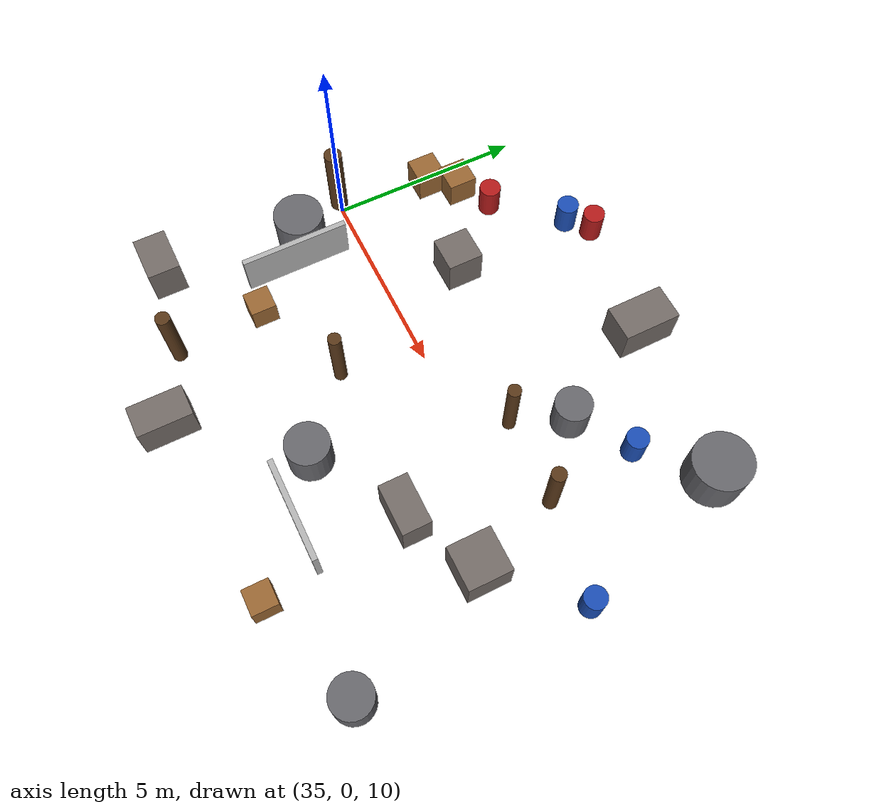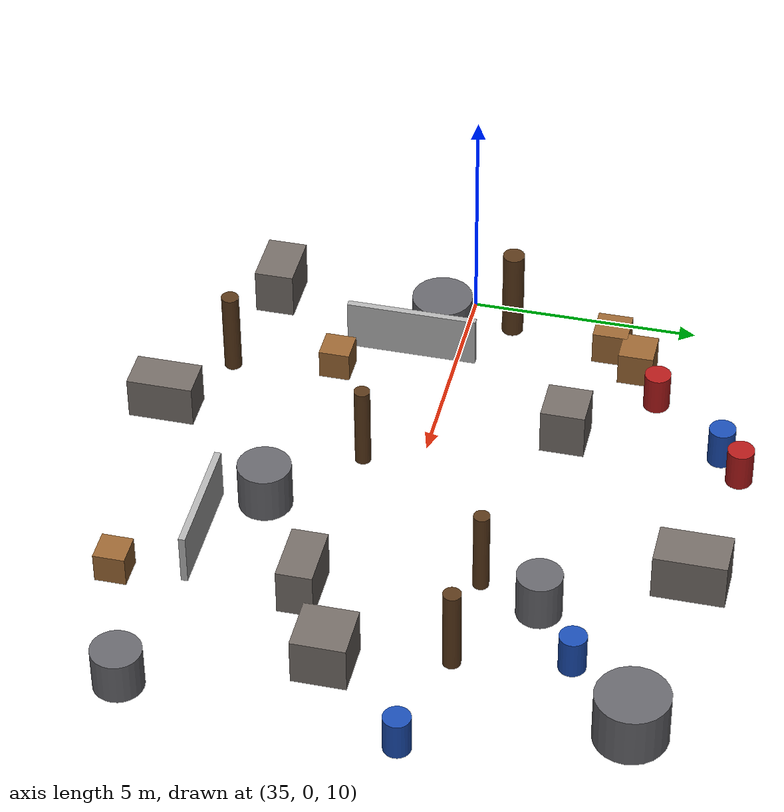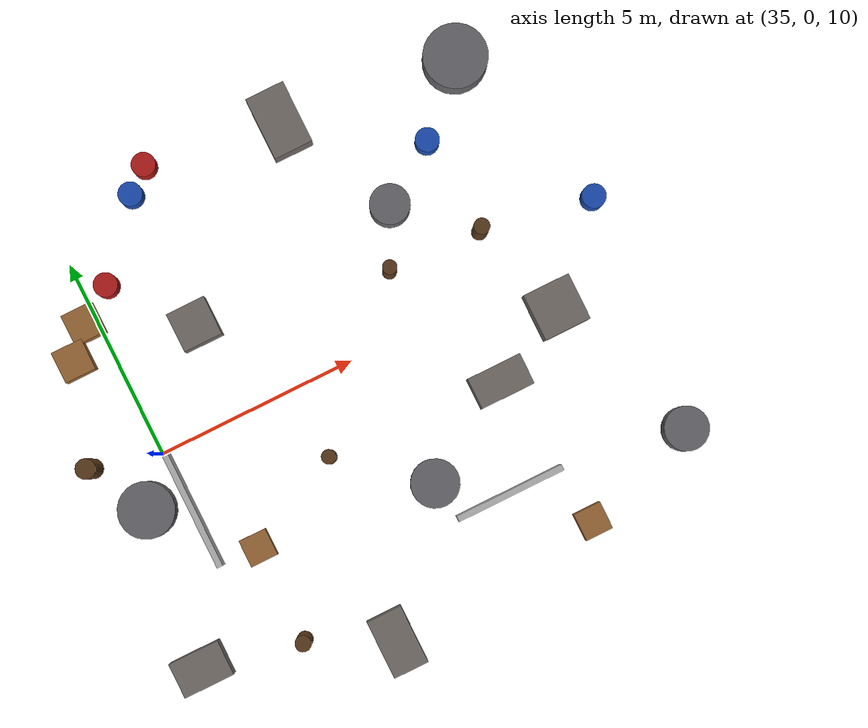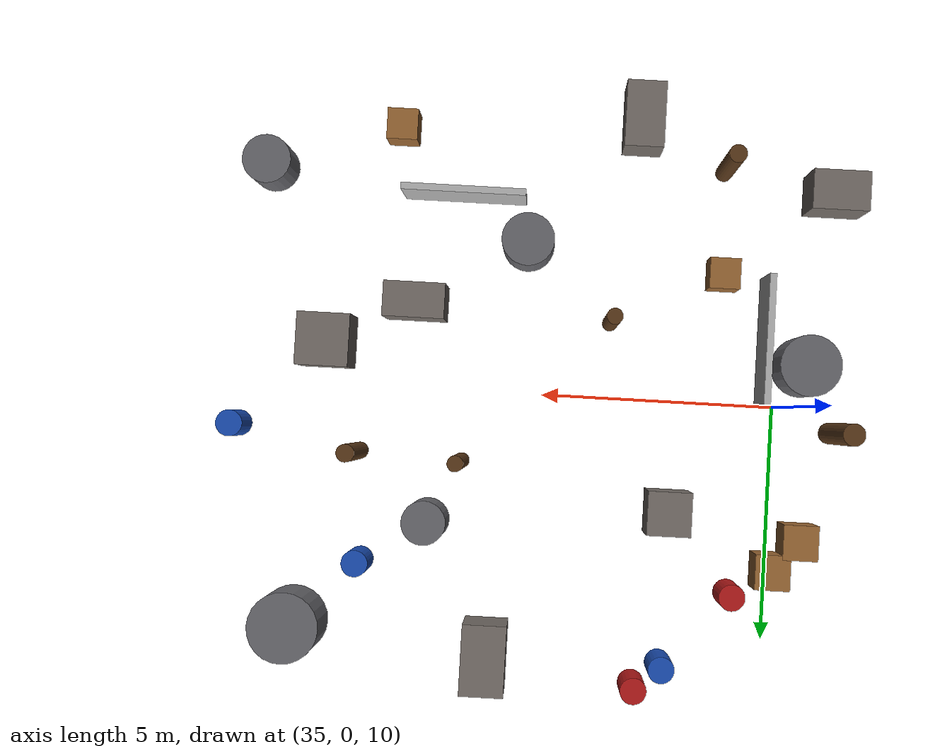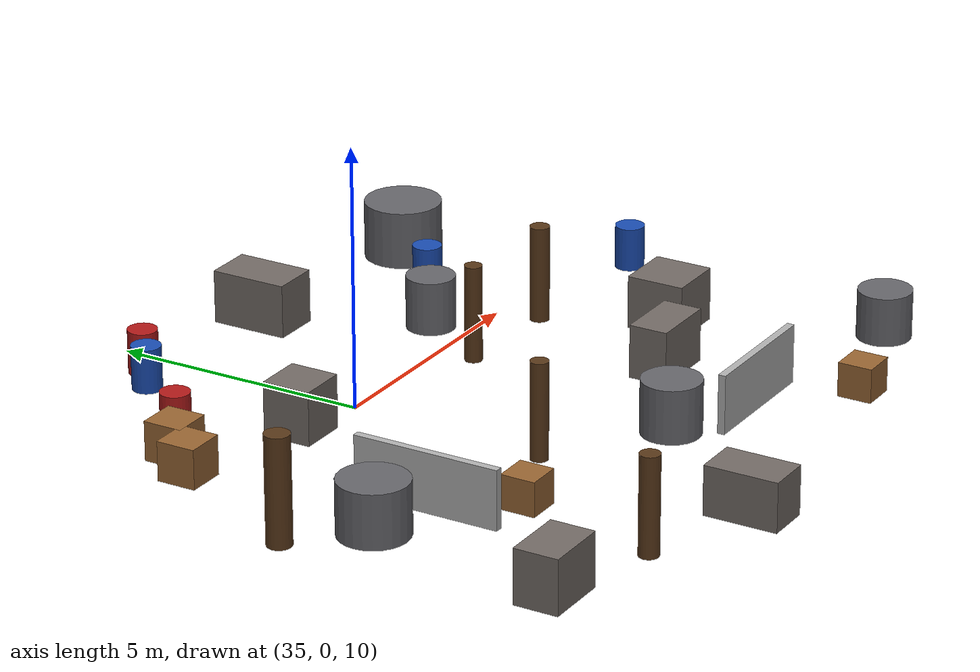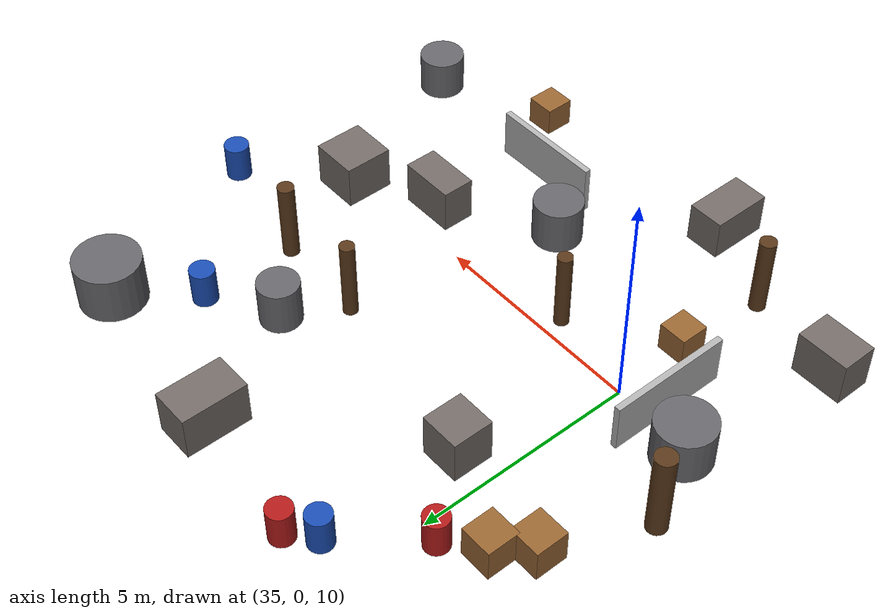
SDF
<sdf version="1.6">
 <world name="outdoor">
  <physics name="1ms" type="ignored">
   <max_step_size>0.004</max_step_size>
   <real_time_factor>1</real_time_factor>
  </physics>
  <plugin filename="ignition-gazebo-physics-system" name="ignition::gazebo::systems::Physics"/>
  <plugin filename="ignition-gazebo-user-commands-system" name="ignition::gazebo::systems::UserCommands"/>
  <plugin filename="ignition-gazebo-scene-broadcaster-system" name="ignition::gazebo::systems::SceneBroadcaster"/>
  <plugin filename="ignition-gazebo-sensors-system" name="ignition::gazebo::systems::Sensors">
   <render_engine>ogre2</render_engine>
  </plugin>
  <plugin filename="ignition-gazebo-navsat-system" name="ignition::gazebo::systems::NavSat"/>
  <spherical_coordinates>
   <surface_model>EARTH_WGS84</surface_model>
   <world_frame_orientation>ENU</world_frame_orientation>
   <latitude_deg>47.3977</latitude_deg>
   <longitude_deg>8.5456</longitude_deg>
   <elevation>0</elevation>
   <heading_deg>0</heading_deg>
  </spherical_coordinates>
  <plugin filename="ignition-gazebo-contact-system" name="ignition::gazebo::systems::Contact"/>
  <plugin filename="ignition-gazebo-imu-system" name="ignition::gazebo::systems::Imu"/>
  <light type="directional" name="sun">
   <pose>0 0 10 0 0 0</pose>
   <diffuse>0.8 0.8 0.8 1</diffuse>
   <specular>0.2 0.2 0.2 1</specular>
   <direction>-0.5 0.1 -0.9</direction>
  </light>
  <model name="rock_a">
   <static>true</static>
   <pose>37.00 2.50 8.70 0 0 0</pose>
   <link name="link">
    <collision name="c"><geometry><box><size>1.0 1.0 1.1</size></box></geometry></collision>
    <visual name="v">
     <geometry><box><size>1.0 1.0 1.1</size></box></geometry>
     <material><ambient>0.45 0.42 0.4 1</ambient><diffuse>0.45 0.42 0.4 1</diffuse></material>
    </visual>
   </link>
  </model>
  <model name="rock_b">
   <static>true</static>
   <pose>43.00 -2.00 8.70 0 0 0</pose>
   <link name="link">
    <collision name="c"><geometry><box><size>1.4 0.8 1.1</size></box></geometry></collision>
    <visual name="v">
     <geometry><box><size>1.4 0.8 1.1</size></box></geometry>
     <material><ambient>0.45 0.42 0.4 1</ambient><diffuse>0.45 0.42 0.4 1</diffuse></material>
    </visual>
   </link>
  </model>
  <model name="rock_c">
   <static>true</static>
   <pose>40.50 -3.50 8.70 0 0 0</pose>
   <link name="link">
    <collision name="c">
     <geometry><cylinder><radius>0.6</radius><length>1.1</length></cylinder></geometry>
    </collision>
    <visual name="v">
     <geometry><cylinder><radius>0.6</radius><length>1.1</length></cylinder></geometry>
     <material><ambient>0.4 0.4 0.42 1</ambient><diffuse>0.4 0.4 0.42 1</diffuse></material>
    </visual>
   </link>
  </model>
  <model name="rock_d">
   <static>true</static>
   <pose>42.50 3.00 8.70 0 0 0</pose>
   <link name="link">
    <collision name="c">
     <geometry><cylinder><radius>0.5</radius><length>1.1</length></cylinder></geometry>
    </collision>
    <visual name="v">
     <geometry><cylinder><radius>0.5</radius><length>1.1</length></cylinder></geometry>
     <material><ambient>0.4 0.4 0.42 1</ambient><diffuse>0.4 0.4 0.42 1</diffuse></material>
    </visual>
   </link>
  </model>
  <model name="crate_a">
   <static>true</static>
   <pose>36.00 -3.00 8.70 0 0 0</pose>
   <link name="link">
    <collision name="c"><geometry><box><size>0.7 0.7 0.7</size></box></geometry></collision>
    <visual name="v">
     <geometry><box><size>0.7 0.7 0.7</size></box></geometry>
     <material><ambient>0.6 0.4 0.2 1</ambient><diffuse>0.6 0.4 0.2 1</diffuse></material>
    </visual>
   </link>
  </model>
  <model name="barrel_a">
   <static>true</static>
   <pose>44.00 4.00 8.70 0 0 0</pose>
   <link name="link">
    <collision name="c">
     <geometry><cylinder><radius>0.3</radius><length>0.9</length></cylinder></geometry>
    </collision>
    <visual name="v">
     <geometry><cylinder><radius>0.3</radius><length>0.9</length></cylinder></geometry>
     <material><ambient>0.1 0.3 0.7 1</ambient><diffuse>0.1 0.3 0.7 1</diffuse></material>
    </visual>
   </link>
  </model>
  <model name="barrel_c">
   <static>true</static>
   <pose>35.50 4.30 8.70 0 0 0</pose>
   <link name="link">
    <collision name="c">
     <geometry><cylinder><radius>0.3</radius><length>0.9</length></cylinder></geometry>
    </collision>
    <visual name="v">
     <geometry><cylinder><radius>0.3</radius><length>0.9</length></cylinder></geometry>
     <material><ambient>0.7 0.1 0.1 1</ambient><diffuse>0.7 0.1 0.1 1</diffuse></material>
    </visual>
   </link>
  </model>
  <model name="trunk_a">
   <static>true</static>
   <pose>38.50 -1.80 9.00 0 0 0</pose>
   <link name="link">
    <collision name="c">
     <geometry><cylinder><radius>0.18</radius><length>2.0</length></cylinder></geometry>
    </collision>
    <visual name="v">
     <geometry><cylinder><radius>0.18</radius><length>2.0</length></cylinder></geometry>
     <material><ambient>0.35 0.22 0.1 1</ambient><diffuse>0.35 0.22 0.1 1</diffuse></material>
    </visual>
   </link>
  </model>
  <model name="trunk_b">
   <static>true</static>
   <pose>41.80 1.60 9.00 0 0 0</pose>
   <link name="link">
    <collision name="c">
     <geometry><cylinder><radius>0.18</radius><length>2.0</length></cylinder></geometry>
    </collision>
    <visual name="v">
     <geometry><cylinder><radius>0.18</radius><length>2.0</length></cylinder></geometry>
     <material><ambient>0.35 0.22 0.1 1</ambient><diffuse>0.35 0.22 0.1 1</diffuse></material>
    </visual>
   </link>
  </model>
  <model name="rock_e">
   <static>true</static>
   <pose>45.00 -1.00 8.70 0 0 0</pose>
   <link name="link">
    <collision name="c"><geometry><box><size>1.2 1.2 1.1</size></box></geometry></collision>
    <visual name="v">
     <geometry><box><size>1.2 1.2 1.1</size></box></geometry>
     <material><ambient>0.45 0.42 0.4 1</ambient><diffuse>0.45 0.42 0.4 1</diffuse></material>
    </visual>
   </link>
  </model>
  <model name="rock_f">
   <static>true</static>
   <pose>34.00 -1.00 8.70 0 0 0</pose>
   <link name="link">
    <collision name="c">
     <geometry><cylinder><radius>0.7</radius><length>1.1</length></cylinder></geometry>
    </collision>
    <visual name="v">
     <geometry><cylinder><radius>0.7</radius><length>1.1</length></cylinder></geometry>
     <material><ambient>0.4 0.4 0.42 1</ambient><diffuse>0.4 0.4 0.42 1</diffuse></material>
    </visual>
   </link>
  </model>
  <model name="rock_g">
   <static>true</static>
   <pose>41.00 6.00 8.70 0 0 0</pose>
   <link name="link">
    <collision name="c"><geometry><box><size>1.0 1.6 1.1</size></box></geometry></collision>
    <visual name="v">
     <geometry><box><size>1.0 1.6 1.1</size></box></geometry>
     <material><ambient>0.45 0.42 0.4 1</ambient><diffuse>0.45 0.42 0.4 1</diffuse></material>
    </visual>
   </link>
  </model>
  <model name="rock_h">
   <static>true</static>
   <pose>33.50 -5.00 8.70 0 0 0</pose>
   <link name="link">
    <collision name="c"><geometry><box><size>1.3 0.9 1.1</size></box></geometry></collision>
    <visual name="v">
     <geometry><box><size>1.3 0.9 1.1</size></box></geometry>
     <material><ambient>0.45 0.42 0.4 1</ambient><diffuse>0.45 0.42 0.4 1</diffuse></material>
    </visual>
   </link>
  </model>
  <model name="rock_i">
   <static>true</static>
   <pose>45.50 5.50 8.70 0 0 0</pose>
   <link name="link">
    <collision name="c">
     <geometry><cylinder><radius>0.8</radius><length>1.2</length></cylinder></geometry>
    </collision>
    <visual name="v">
     <geometry><cylinder><radius>0.8</radius><length>1.2</length></cylinder></geometry>
     <material><ambient>0.4 0.4 0.42 1</ambient><diffuse>0.4 0.4 0.42 1</diffuse></material>
    </visual>
   </link>
  </model>
  <model name="rock_j">
   <static>true</static>
   <pose>38.00 -6.50 8.70 0 0 0</pose>
   <link name="link">
    <collision name="c"><geometry><box><size>0.9 1.5 1.0</size></box></geometry></collision>
    <visual name="v">
     <geometry><box><size>0.9 1.5 1.0</size></box></geometry>
     <material><ambient>0.45 0.42 0.4 1</ambient><diffuse>0.45 0.42 0.4 1</diffuse></material>
    </visual>
   </link>
  </model>
  <model name="rock_k">
   <static>true</static>
   <pose>46.50 -5.00 8.70 0 0 0</pose>
   <link name="link">
    <collision name="c">
     <geometry><cylinder><radius>0.55</radius><length>1.0</length></cylinder></geometry>
    </collision>
    <visual name="v">
     <geometry><cylinder><radius>0.55</radius><length>1.0</length></cylinder></geometry>
     <material><ambient>0.4 0.4 0.42 1</ambient><diffuse>0.4 0.4 0.42 1</diffuse></material>
    </visual>
   </link>
  </model>
  <model name="crate_b">
   <static>true</static>
   <pose>34.00 3.00 8.70 0 0 0</pose>
   <link name="link">
    <collision name="c"><geometry><box><size>0.8 0.8 0.8</size></box></geometry></collision>
    <visual name="v">
     <geometry><box><size>0.8 0.8 0.8</size></box></geometry>
     <material><ambient>0.6 0.4 0.2 1</ambient><diffuse>0.6 0.4 0.2 1</diffuse></material>
    </visual>
   </link>
  </model>
  <model name="crate_c">
   <static>true</static>
   <pose>34.60 3.70 8.70 0 0 0</pose>
   <link name="link">
    <collision name="c"><geometry><box><size>0.8 0.8 0.8</size></box></geometry></collision>
    <visual name="v">
     <geometry><box><size>0.8 0.8 0.8</size></box></geometry>
     <material><ambient>0.6 0.4 0.2 1</ambient><diffuse>0.6 0.4 0.2 1</diffuse></material>
    </visual>
   </link>
  </model>
  <model name="crate_d">
   <static>true</static>
   <pose>43.50 -6.00 8.70 0 0 0</pose>
   <link name="link">
    <collision name="c"><geometry><box><size>0.7 0.7 0.7</size></box></geometry></collision>
    <visual name="v">
     <geometry><box><size>0.7 0.7 0.7</size></box></geometry>
     <material><ambient>0.6 0.4 0.2 1</ambient><diffuse>0.6 0.4 0.2 1</diffuse></material>
    </visual>
   </link>
  </model>
  <model name="barrel_d">
   <static>true</static>
   <pose>37.00 6.00 8.70 0 0 0</pose>
   <link name="link">
    <collision name="c">
     <geometry><cylinder><radius>0.3</radius><length>0.9</length></cylinder></geometry>
    </collision>
    <visual name="v">
     <geometry><cylinder><radius>0.3</radius><length>0.9</length></cylinder></geometry>
     <material><ambient>0.1 0.3 0.7 1</ambient><diffuse>0.1 0.3 0.7 1</diffuse></material>
    </visual>
   </link>
  </model>
  <model name="barrel_e">
   <static>true</static>
   <pose>37.60 6.50 8.70 0 0 0</pose>
   <link name="link">
    <collision name="c">
     <geometry><cylinder><radius>0.3</radius><length>0.9</length></cylinder></geometry>
    </collision>
    <visual name="v">
     <geometry><cylinder><radius>0.3</radius><length>0.9</length></cylinder></geometry>
     <material><ambient>0.7 0.1 0.1 1</ambient><diffuse>0.7 0.1 0.1 1</diffuse></material>
    </visual>
   </link>
  </model>
  <model name="barrel_f">
   <static>true</static>
   <pose>47.00 1.00 8.70 0 0 0</pose>
   <link name="link">
    <collision name="c">
     <geometry><cylinder><radius>0.3</radius><length>0.9</length></cylinder></geometry>
    </collision>
    <visual name="v">
     <geometry><cylinder><radius>0.3</radius><length>0.9</length></cylinder></geometry>
     <material><ambient>0.1 0.3 0.7 1</ambient><diffuse>0.1 0.3 0.7 1</diffuse></material>
    </visual>
   </link>
  </model>
  <model name="trunk_d">
   <static>true</static>
   <pose>33.20 0.50 9.00 0 0 0</pose>
   <link name="link">
    <collision name="c">
     <geometry><cylinder><radius>0.25</radius><length>2.2</length></cylinder></geometry>
    </collision>
    <visual name="v">
     <geometry><cylinder><radius>0.25</radius><length>2.2</length></cylinder></geometry>
     <material><ambient>0.35 0.22 0.1 1</ambient><diffuse>0.35 0.22 0.1 1</diffuse></material>
    </visual>
   </link>
  </model>
  <model name="trunk_e">
   <static>true</static>
   <pose>44.20 1.50 9.00 0 0 0</pose>
   <link name="link">
    <collision name="c">
     <geometry><cylinder><radius>0.2</radius><length>2.0</length></cylinder></geometry>
    </collision>
    <visual name="v">
     <geometry><cylinder><radius>0.2</radius><length>2.0</length></cylinder></geometry>
     <material><ambient>0.35 0.22 0.1 1</ambient><diffuse>0.35 0.22 0.1 1</diffuse></material>
    </visual>
   </link>
  </model>
  <model name="trunk_f">
   <static>true</static>
   <pose>36.00 -5.50 9.00 0 0 0</pose>
   <link name="link">
    <collision name="c">
     <geometry><cylinder><radius>0.2</radius><length>2.0</length></cylinder></geometry>
    </collision>
    <visual name="v">
     <geometry><cylinder><radius>0.2</radius><length>2.0</length></cylinder></geometry>
     <material><ambient>0.35 0.22 0.1 1</ambient><diffuse>0.35 0.22 0.1 1</diffuse></material>
    </visual>
   </link>
  </model>
  <model name="wall_a">
   <static>true</static>
   <pose>42.00 -4.50 8.90 0 0 0</pose>
   <link name="link">
    <collision name="c"><geometry><box><size>2.8 0.15 1.2</size></box></geometry></collision>
    <visual name="v">
     <geometry><box><size>2.8 0.15 1.2</size></box></geometry>
     <material><ambient>0.7 0.7 0.7 1</ambient><diffuse>0.7 0.7 0.7 1</diffuse></material>
    </visual>
   </link>
  </model>
  <model name="wall_b">
   <static>true</static>
   <pose>35.00 -1.50 8.90 0 0 0</pose>
   <link name="link">
    <collision name="c"><geometry><box><size>0.15 3.0 1.2</size></box></geometry></collision>
    <visual name="v">
     <geometry><box><size>0.15 3.0 1.2</size></box></geometry>
     <material><ambient>0.7 0.7 0.7 1</ambient><diffuse>0.7 0.7 0.7 1</diffuse></material>
    </visual>
   </link>
  </model>
  <model name="world_monitor_cam">
   <static>true</static>
   <pose>48.0 8.0 15.0 0 0.55 -2.356</pose>
   <link name="link">
    <sensor name="monitor_camera" type="camera">
     <always_on>true</always_on>
     <update_rate>10</update_rate>
     <topic>world_monitor/image_raw</topic>
     <camera>
      <horizontal_fov>1.3</horizontal_fov>
      <image><width>960</width><height>540</height><format>R8G8B8</format></image>
      <clip><near>0.05</near><far>80.0</far></clip>
     </camera>
    </sensor>
   </link>
  </model>
 </world>
</sdf>
